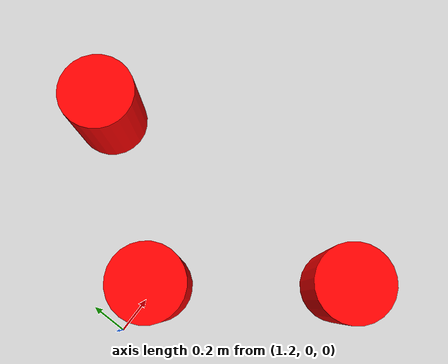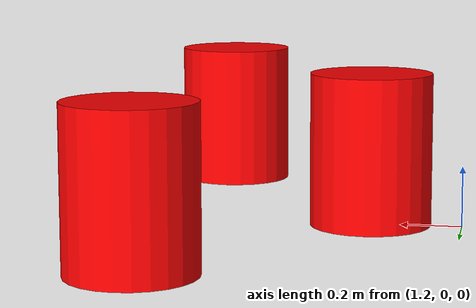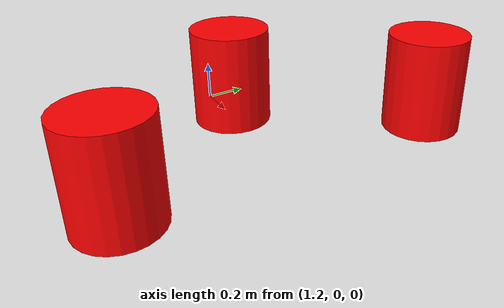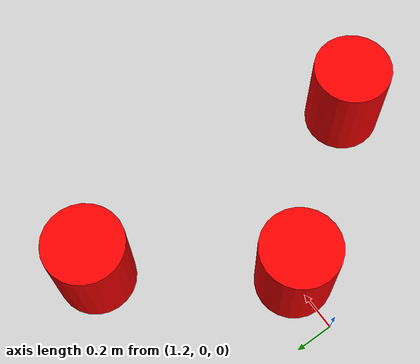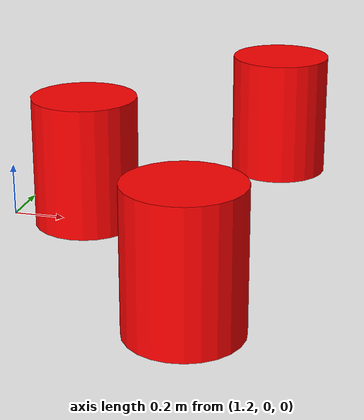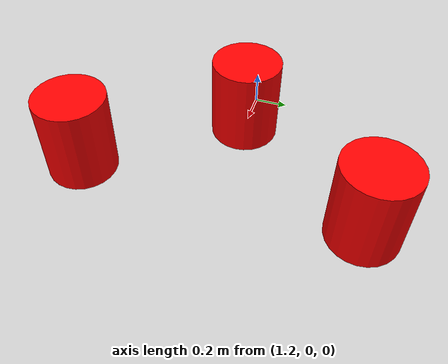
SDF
<?xml version="1.0" ?>
<sdf version="1.6">
  <model name="chaos_swarm">
    <pose>1.5 0 0.25 0 0 0</pose>
    <link name="link">

      <collision name="c1">
        <pose>0 0 0 0 0 0</pose>
        <geometry><cylinder><radius>0.2</radius><length>0.5</length></cylinder></geometry>
      </collision>
      <visual name="v1">
        <pose>0 0 0 0 0 0</pose>
        <geometry><cylinder><radius>0.2</radius><length>0.5</length></cylinder></geometry>
        <material><ambient>1 0 0 1</ambient><diffuse>1 0 0 1</diffuse></material>
      </visual>

      <collision name="c2">
        <pose>0.6 0.8 0 0 0 0</pose>
        <geometry><cylinder><radius>0.2</radius><length>0.5</length></cylinder></geometry>
      </collision>
      <visual name="v2">
        <pose>0.6 0.8 0 0 0 0</pose>
        <geometry><cylinder><radius>0.2</radius><length>0.5</length></cylinder></geometry>
        <material><ambient>1 0 0 1</ambient><diffuse>1 0 0 1</diffuse></material>
      </visual>

      <collision name="c3">
        <pose>0.6 -0.8 0 0 0 0</pose>
        <geometry><cylinder><radius>0.2</radius><length>0.5</length></cylinder></geometry>
      </collision>
      <visual name="v3">
        <pose>0.6 -0.8 0 0 0 0</pose>
        <geometry><cylinder><radius>0.2</radius><length>0.5</length></cylinder></geometry>
        <material><ambient>1 0 0 1</ambient><diffuse>1 0 0 1</diffuse></material>
      </visual>

    </link>

    <plugin name="obstacle_planar_move" filename="libgazebo_ros_planar_move.so">
      <ros>
        <namespace>/obstacle</namespace>
        <remapping>cmd_vel:=cmd_vel</remapping>
        <remapping>odom:=odom_swarm</remapping>
      </ros>
      <update_rate>100.0</update_rate>
      <publish_rate>10.0</publish_rate>
      <publish_odom>true</publish_odom>
      <publish_odom_tf>true</publish_odom_tf>
      <odometry_frame>odom_swarm</odometry_frame>
      <robot_base_frame>link</robot_base_frame>
    </plugin>
  </model>
</sdf>
